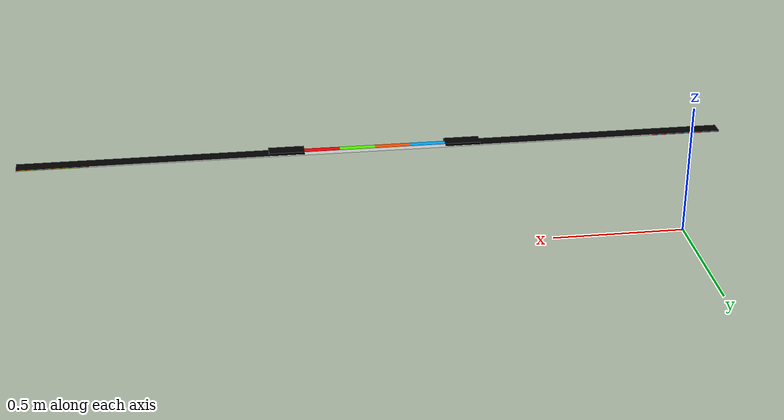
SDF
<?xml version="1.0"?>
<sdf version="1.4">
  <model name='arena'>
      <static>1</static>
      <link name='link_arena'>
        <pose>0 0 -0.1 1.5708 -0 0</pose>
        <collision name='collision'>
          <geometry>
            <mesh>
              <uri>model://arena/meshes/arena.dae</uri>
              <scale>1 0.01 1</scale>
            </mesh>
          </geometry>
          <surface>
            <friction>
              <ode>
                <mu>100</mu>
                <mu2>50</mu2>
              </ode>
            </friction>
          </surface>
          <max_contacts>10</max_contacts>
          <laser_retro>0</laser_retro>
        </collision>
        <visual name='visual'>
          <cast_shadows>1</cast_shadows>
          <transparency>0</transparency>
          <geometry>
            <mesh>
              <uri>model://arena/meshes/arena.dae</uri>
              <scale>1 0.01 1</scale>
            </mesh>
          </geometry>
        </visual>
        <velocity_decay>
          <linear>0</linear>
          <angular>0</angular>
        </velocity_decay>
        <self_collide>0</self_collide>
        <kinematic>0</kinematic>
        <gravity>1</gravity>
      </link>
  </model>
</sdf>
